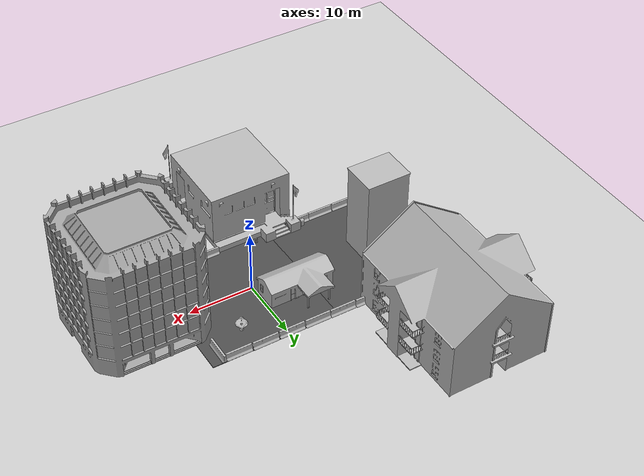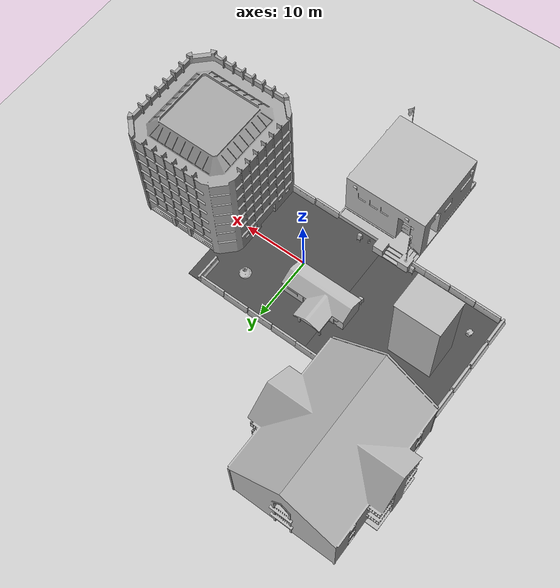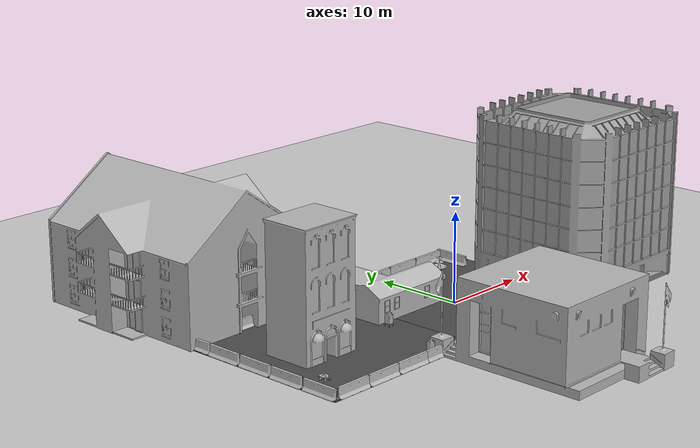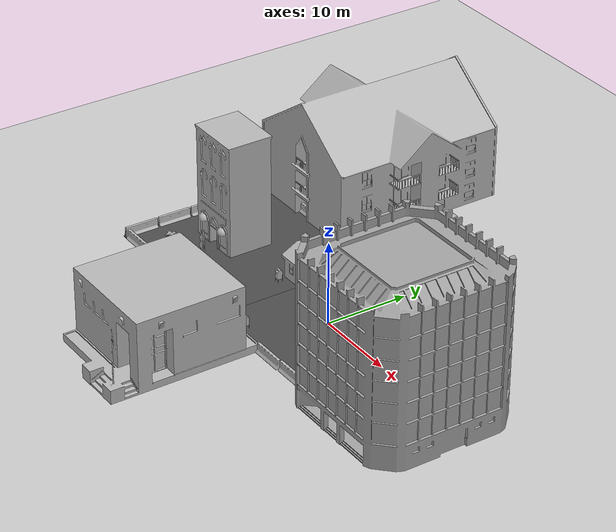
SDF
<sdf version="1.6">
 <world name="default">
  <light name="sun" type="directional">
   <pose>0 0 15 0 -0 0</pose>
   <diffuse>1 1 1 1</diffuse>
   <specular>0.1 0.1 0.1 1</specular>
   <attenuation>
    <range>1000</range>
    <constant>0.9</constant>
    <linear>0.01</linear>
    <quadratic>0.001</quadratic>
   </attenuation>
   <direction>-0.5 0.5 -1</direction>
  </light>
  <model name="ground_plane">
   <static>1</static>
   <link name="link">
    <collision name="collision">
     <geometry><plane><normal>0 0 1</normal><size>100 100</size></plane></geometry>
     <surface><friction><ode><mu>100</mu><mu2>50</mu2></ode></friction></surface>
    </collision>
    <visual name="visual">
     <transparency>1</transparency>
     <cast_shadows>0</cast_shadows>
     <geometry><plane><normal>0 0 1</normal><size>100 100</size></plane></geometry>
     <material>
      <script><uri>file://media/materials/scripts/gazebo.material</uri><name>Gazebo/Grey</name></script>
     </material>
    </visual>
   </link>
  </model>
  <gravity>0 0 -9.8</gravity>
  <magnetic_field>6e-06 2.3e-05 -4.2e-05</magnetic_field>
  <atmosphere type="adiabatic"/>
  <physics name="default_physics" default="0" type="ode">
   <max_step_size>0.001</max_step_size>
   <real_time_factor>1</real_time_factor>
   <real_time_update_rate>1000</real_time_update_rate>
  </physics>
  <scene><ambient>0.4 0.4 0.4 1</ambient><background>0.7 0.7 0.7 1</background><shadows>1</shadows></scene>
  <spherical_coordinates>
   <surface_model>EARTH_WGS84</surface_model>
   <latitude_deg>0</latitude_deg>
   <longitude_deg>0</longitude_deg>
   <elevation>0</elevation>
   <heading_deg>0</heading_deg>
  </spherical_coordinates>
  <model name="Office Building">
   <static>1</static>
   <link name="link">
    <collision name="collision">
     <geometry>
      <mesh><uri>model://office_building/meshes/office_building.dae</uri><scale>1 1 1</scale></mesh>
     </geometry>
    </collision>
    <visual name="visual">
     <geometry>
      <mesh><uri>model://office_building/meshes/office_building.dae</uri><scale>1 1 1</scale></mesh>
     </geometry>
    </visual>
   </link>
   <pose>17.2128 -2.67644 0 0 -0 0</pose>
  </model>
  <model name="asphalt_plane">
   <static>1</static>
   <link name="link">
    <collision name="collision"><geometry><box><size>20 20 0.1</size></box></geometry></collision>
    <visual name="visual">
     <cast_shadows>0</cast_shadows>
     <geometry><box><size>20 20 0.1</size></box></geometry>
     <material>
      <script>
       <uri>model://asphalt_plane/materials/scripts</uri>
       <uri>model://asphalt_plane/materials/textures</uri>
       <name>vrc/asphalt</name>
      </script>
     </material>
    </visual>
   </link>
   <pose>-17.8415 0.862598 0 0 -0 0</pose>
  </model>
  <model name="asphalt_plane_2">
   <static>1</static>
   <link name="link">
    <collision name="collision"><geometry><box><size>20 20 0.1</size></box></geometry></collision>
    <visual name="visual">
     <cast_shadows>0</cast_shadows>
     <geometry><box><size>20 20 0.1</size></box></geometry>
     <material>
      <script>
       <uri>model://asphalt_plane/materials/scripts</uri>
       <uri>model://asphalt_plane/materials/textures</uri>
       <name>vrc/asphalt</name>
      </script>
     </material>
    </visual>
   </link>
   <pose>2.1016 0.908572 0 0 -0 0</pose>
  </model>
  <model name="jersey_barrier">
   <static>1</static>
   <link name="link">
    <visual name="visual">
     <geometry>
      <mesh><uri>model://jersey_barrier/meshes/jersey_barrier.dae</uri><scale>1 1 1</scale></mesh>
     </geometry>
    </visual>
    <collision name="upright">
     <pose>0 0 0.5715 0 -0 0</pose>
     <geometry><box><size>4.06542 0.3063 1.143</size></box></geometry>
    </collision>
    <collision name="base">
     <pose>0 0 0.032258 0 -0 0</pose>
     <geometry><box><size>4.06542 0.8107 0.064516</size></box></geometry>
    </collision>
    <collision name="base2">
     <pose>0 0 0.1 0 -0 0</pose>
     <geometry><box><size>4.06542 0.65 0.1</size></box></geometry>
    </collision>
    <collision name="base3">
     <pose>0 0 0.2 0 -0 0</pose>
     <geometry><box><size>4.06542 0.5 0.1</size></box></geometry>
    </collision>
    <collision name="left-angle">
     <pose>0 -0.224 0.2401 0.9 -0 0</pose>
     <geometry><box><size>4.06542 0.5 0.064516</size></box></geometry>
    </collision>
    <collision name="right-angle">
     <pose>0 0.224 0.2401 -0.9 0 0</pose>
     <geometry><box><size>4.06542 0.5 0.064516</size></box></geometry>
    </collision>
   </link>
   <pose>7.90964 10.5368 0 0 -0 0</pose>
  </model>
  <model name="jersey_barrier_0">
   <static>1</static>
   <link name="link">
    <visual name="visual">
     <geometry>
      <mesh><uri>model://jersey_barrier/meshes/jersey_barrier.dae</uri><scale>1 1 1</scale></mesh>
     </geometry>
    </visual>
    <collision name="upright">
     <pose>0 0 0.5715 0 -0 0</pose>
     <geometry><box><size>4.06542 0.3063 1.143</size></box></geometry>
    </collision>
    <collision name="base">
     <pose>0 0 0.032258 0 -0 0</pose>
     <geometry><box><size>4.06542 0.8107 0.064516</size></box></geometry>
    </collision>
    <collision name="base2">
     <pose>0 0 0.1 0 -0 0</pose>
     <geometry><box><size>4.06542 0.65 0.1</size></box></geometry>
    </collision>
    <collision name="base3">
     <pose>0 0 0.2 0 -0 0</pose>
     <geometry><box><size>4.06542 0.5 0.1</size></box></geometry>
    </collision>
    <collision name="left-angle">
     <pose>0 -0.224 0.2401 0.9 -0 0</pose>
     <geometry><box><size>4.06542 0.5 0.064516</size></box></geometry>
    </collision>
    <collision name="right-angle">
     <pose>0 0.224 0.2401 -0.9 0 0</pose>
     <geometry><box><size>4.06542 0.5 0.064516</size></box></geometry>
    </collision>
   </link>
   <pose>3.73146 10.5941 0 0 -0 0</pose>
  </model>
  <model name="jersey_barrier_1">
   <static>1</static>
   <link name="link">
    <visual name="visual">
     <geometry>
      <mesh><uri>model://jersey_barrier/meshes/jersey_barrier.dae</uri><scale>1 1 1</scale></mesh>
     </geometry>
    </visual>
    <collision name="upright">
     <pose>0 0 0.5715 0 -0 0</pose>
     <geometry><box><size>4.06542 0.3063 1.143</size></box></geometry>
    </collision>
    <collision name="base">
     <pose>0 0 0.032258 0 -0 0</pose>
     <geometry><box><size>4.06542 0.8107 0.064516</size></box></geometry>
    </collision>
    <collision name="base2">
     <pose>0 0 0.1 0 -0 0</pose>
     <geometry><box><size>4.06542 0.65 0.1</size></box></geometry>
    </collision>
    <collision name="base3">
     <pose>0 0 0.2 0 -0 0</pose>
     <geometry><box><size>4.06542 0.5 0.1</size></box></geometry>
    </collision>
    <collision name="left-angle">
     <pose>0 -0.224 0.2401 0.9 -0 0</pose>
     <geometry><box><size>4.06542 0.5 0.064516</size></box></geometry>
    </collision>
    <collision name="right-angle">
     <pose>0 0.224 0.2401 -0.9 0 0</pose>
     <geometry><box><size>4.06542 0.5 0.064516</size></box></geometry>
    </collision>
   </link>
   <pose>-0.464651 10.5923 0 0 -0 0</pose>
  </model>
  <model name="jersey_barrier_2">
   <static>1</static>
   <link name="link">
    <visual name="visual">
     <geometry>
      <mesh><uri>model://jersey_barrier/meshes/jersey_barrier.dae</uri><scale>1 1 1</scale></mesh>
     </geometry>
    </visual>
    <collision name="upright">
     <pose>0 0 0.5715 0 -0 0</pose>
     <geometry><box><size>4.06542 0.3063 1.143</size></box></geometry>
    </collision>
    <collision name="base">
     <pose>0 0 0.032258 0 -0 0</pose>
     <geometry><box><size>4.06542 0.8107 0.064516</size></box></geometry>
    </collision>
    <collision name="base2">
     <pose>0 0 0.1 0 -0 0</pose>
     <geometry><box><size>4.06542 0.65 0.1</size></box></geometry>
    </collision>
    <collision name="base3">
     <pose>0 0 0.2 0 -0 0</pose>
     <geometry><box><size>4.06542 0.5 0.1</size></box></geometry>
    </collision>
    <collision name="left-angle">
     <pose>0 -0.224 0.2401 0.9 -0 0</pose>
     <geometry><box><size>4.06542 0.5 0.064516</size></box></geometry>
    </collision>
    <collision name="right-angle">
     <pose>0 0.224 0.2401 -0.9 0 0</pose>
     <geometry><box><size>4.06542 0.5 0.064516</size></box></geometry>
    </collision>
   </link>
   <pose>-4.62765 10.6255 0 0 -0 0</pose>
  </model>
  <model name="jersey_barrier_3">
   <static>1</static>
   <link name="link">
    <visual name="visual">
     <geometry>
      <mesh><uri>model://jersey_barrier/meshes/jersey_barrier.dae</uri><scale>1 1 1</scale></mesh>
     </geometry>
    </visual>
    <collision name="upright">
     <pose>0 0 0.5715 0 -0 0</pose>
     <geometry><box><size>4.06542 0.3063 1.143</size></box></geometry>
    </collision>
    <collision name="base">
     <pose>0 0 0.032258 0 -0 0</pose>
     <geometry><box><size>4.06542 0.8107 0.064516</size></box></geometry>
    </collision>
    <collision name="base2">
     <pose>0 0 0.1 0 -0 0</pose>
     <geometry><box><size>4.06542 0.65 0.1</size></box></geometry>
    </collision>
    <collision name="base3">
     <pose>0 0 0.2 0 -0 0</pose>
     <geometry><box><size>4.06542 0.5 0.1</size></box></geometry>
    </collision>
    <collision name="left-angle">
     <pose>0 -0.224 0.2401 0.9 -0 0</pose>
     <geometry><box><size>4.06542 0.5 0.064516</size></box></geometry>
    </collision>
    <collision name="right-angle">
     <pose>0 0.224 0.2401 -0.9 0 0</pose>
     <geometry><box><size>4.06542 0.5 0.064516</size></box></geometry>
    </collision>
   </link>
   <pose>-8.72096 10.6719 0 0 -0 0</pose>
  </model>
  <model name="jersey_barrier_4">
   <static>1</static>
   <link name="link">
    <visual name="visual">
     <geometry>
      <mesh><uri>model://jersey_barrier/meshes/jersey_barrier.dae</uri><scale>1 1 1</scale></mesh>
     </geometry>
    </visual>
    <collision name="upright">
     <pose>0 0 0.5715 0 -0 0</pose>
     <geometry><box><size>4.06542 0.3063 1.143</size></box></geometry>
    </collision>
    <collision name="base">
     <pose>0 0 0.032258 0 -0 0</pose>
     <geometry><box><size>4.06542 0.8107 0.064516</size></box></geometry>
    </collision>
    <collision name="base2">
     <pose>0 0 0.1 0 -0 0</pose>
     <geometry><box><size>4.06542 0.65 0.1</size></box></geometry>
    </collision>
    <collision name="base3">
     <pose>0 0 0.2 0 -0 0</pose>
     <geometry><box><size>4.06542 0.5 0.1</size></box></geometry>
    </collision>
    <collision name="left-angle">
     <pose>0 -0.224 0.2401 0.9 -0 0</pose>
     <geometry><box><size>4.06542 0.5 0.064516</size></box></geometry>
    </collision>
    <collision name="right-angle">
     <pose>0 0.224 0.2401 -0.9 0 0</pose>
     <geometry><box><size>4.06542 0.5 0.064516</size></box></geometry>
    </collision>
   </link>
   <pose>-12.8494 10.7615 0 0 -0 0</pose>
  </model>
  <model name="jersey_barrier_5">
   <static>1</static>
   <link name="link">
    <visual name="visual">
     <geometry>
      <mesh><uri>model://jersey_barrier/meshes/jersey_barrier.dae</uri><scale>1 1 1</scale></mesh>
     </geometry>
    </visual>
    <collision name="upright">
     <pose>0 0 0.5715 0 -0 0</pose>
     <geometry><box><size>4.06542 0.3063 1.143</size></box></geometry>
    </collision>
    <collision name="base">
     <pose>0 0 0.032258 0 -0 0</pose>
     <geometry><box><size>4.06542 0.8107 0.064516</size></box></geometry>
    </collision>
    <collision name="base2">
     <pose>0 0 0.1 0 -0 0</pose>
     <geometry><box><size>4.06542 0.65 0.1</size></box></geometry>
    </collision>
    <collision name="base3">
     <pose>0 0 0.2 0 -0 0</pose>
     <geometry><box><size>4.06542 0.5 0.1</size></box></geometry>
    </collision>
    <collision name="left-angle">
     <pose>0 -0.224 0.2401 0.9 -0 0</pose>
     <geometry><box><size>4.06542 0.5 0.064516</size></box></geometry>
    </collision>
    <collision name="right-angle">
     <pose>0 0.224 0.2401 -0.9 0 0</pose>
     <geometry><box><size>4.06542 0.5 0.064516</size></box></geometry>
    </collision>
   </link>
   <pose>-16.9992 10.8204 0 0 -0 0</pose>
  </model>
  <model name="jersey_barrier_6">
   <static>1</static>
   <link name="link">
    <visual name="visual">
     <geometry>
      <mesh><uri>model://jersey_barrier/meshes/jersey_barrier.dae</uri><scale>1 1 1</scale></mesh>
     </geometry>
    </visual>
    <collision name="upright">
     <pose>0 0 0.5715 0 -0 0</pose>
     <geometry><box><size>4.06542 0.3063 1.143</size></box></geometry>
    </collision>
    <collision name="base">
     <pose>0 0 0.032258 0 -0 0</pose>
     <geometry><box><size>4.06542 0.8107 0.064516</size></box></geometry>
    </collision>
    <collision name="base2">
     <pose>0 0 0.1 0 -0 0</pose>
     <geometry><box><size>4.06542 0.65 0.1</size></box></geometry>
    </collision>
    <collision name="base3">
     <pose>0 0 0.2 0 -0 0</pose>
     <geometry><box><size>4.06542 0.5 0.1</size></box></geometry>
    </collision>
    <collision name="left-angle">
     <pose>0 -0.224 0.2401 0.9 -0 0</pose>
     <geometry><box><size>4.06542 0.5 0.064516</size></box></geometry>
    </collision>
    <collision name="right-angle">
     <pose>0 0.224 0.2401 -0.9 0 0</pose>
     <geometry><box><size>4.06542 0.5 0.064516</size></box></geometry>
    </collision>
   </link>
   <pose>-21.1416 10.8364 0 0 -0 0</pose>
  </model>
  <model name="jersey_barrier_7">
   <static>1</static>
   <link name="link">
    <visual name="visual">
     <geometry>
      <mesh><uri>model://jersey_barrier/meshes/jersey_barrier.dae</uri><scale>1 1 1</scale></mesh>
     </geometry>
    </visual>
    <collision name="upright">
     <pose>0 0 0.5715 0 -0 0</pose>
     <geometry><box><size>4.06542 0.3063 1.143</size></box></geometry>
    </collision>
    <collision name="base">
     <pose>0 0 0.032258 0 -0 0</pose>
     <geometry><box><size>4.06542 0.8107 0.064516</size></box></geometry>
    </collision>
    <collision name="base2">
     <pose>0 0 0.1 0 -0 0</pose>
     <geometry><box><size>4.06542 0.65 0.1</size></box></geometry>
    </collision>
    <collision name="base3">
     <pose>0 0 0.2 0 -0 0</pose>
     <geometry><box><size>4.06542 0.5 0.1</size></box></geometry>
    </collision>
    <collision name="left-angle">
     <pose>0 -0.224 0.2401 0.9 -0 0</pose>
     <geometry><box><size>4.06542 0.5 0.064516</size></box></geometry>
    </collision>
    <collision name="right-angle">
     <pose>0 0.224 0.2401 -0.9 0 0</pose>
     <geometry><box><size>4.06542 0.5 0.064516</size></box></geometry>
    </collision>
   </link>
   <pose>-25.137 10.8763 0 0 -0 0</pose>
  </model>
  <model name="jersey_barrier_8_clone_0_clone_clone_0">
   <static>1</static>
   <link name="link">
    <visual name="visual">
     <geometry>
      <mesh><uri>model://jersey_barrier/meshes/jersey_barrier.dae</uri><scale>1 1 1</scale></mesh>
     </geometry>
    </visual>
    <collision name="upright">
     <pose>0 0 0.5715 0 -0 0</pose>
     <geometry><box><size>4.06542 0.3063 1.143</size></box></geometry>
    </collision>
    <collision name="base">
     <pose>0 0 0.032258 0 -0 0</pose>
     <geometry><box><size>4.06542 0.8107 0.064516</size></box></geometry>
    </collision>
    <collision name="base2">
     <pose>0 0 0.1 0 -0 0</pose>
     <geometry><box><size>4.06542 0.65 0.1</size></box></geometry>
    </collision>
    <collision name="base3">
     <pose>0 0 0.2 0 -0 0</pose>
     <geometry><box><size>4.06542 0.5 0.1</size></box></geometry>
    </collision>
    <collision name="left-angle">
     <pose>0 -0.224 0.2401 0.9 -0 0</pose>
     <geometry><box><size>4.06542 0.5 0.064516</size></box></geometry>
    </collision>
    <collision name="right-angle">
     <pose>0 0.224 0.2401 -0.9 0 0</pose>
     <geometry><box><size>4.06542 0.5 0.064516</size></box></geometry>
    </collision>
   </link>
   <pose>-27.4247 10.1056 0 0 0 -1.57916</pose>
  </model>
  <model name="jersey_barrier_8_clone_0_clone_clone_1">
   <static>1</static>
   <link name="link">
    <visual name="visual">
     <geometry>
      <mesh><uri>model://jersey_barrier/meshes/jersey_barrier.dae</uri><scale>1 1 1</scale></mesh>
     </geometry>
    </visual>
    <collision name="upright">
     <pose>0 0 0.5715 0 -0 0</pose>
     <geometry><box><size>4.06542 0.3063 1.143</size></box></geometry>
    </collision>
    <collision name="base">
     <pose>0 0 0.032258 0 -0 0</pose>
     <geometry><box><size>4.06542 0.8107 0.064516</size></box></geometry>
    </collision>
    <collision name="base2">
     <pose>0 0 0.1 0 -0 0</pose>
     <geometry><box><size>4.06542 0.65 0.1</size></box></geometry>
    </collision>
    <collision name="base3">
     <pose>0 0 0.2 0 -0 0</pose>
     <geometry><box><size>4.06542 0.5 0.1</size></box></geometry>
    </collision>
    <collision name="left-angle">
     <pose>0 -0.224 0.2401 0.9 -0 0</pose>
     <geometry><box><size>4.06542 0.5 0.064516</size></box></geometry>
    </collision>
    <collision name="right-angle">
     <pose>0 0.224 0.2401 -0.9 0 0</pose>
     <geometry><box><size>4.06542 0.5 0.064516</size></box></geometry>
    </collision>
   </link>
   <pose>-27.505 5.91084 0 0 0 -1.57916</pose>
  </model>
  <model name="jersey_barrier_8_clone_0_clone_clone_1_clone">
   <static>1</static>
   <link name="link">
    <visual name="visual">
     <geometry>
      <mesh><uri>model://jersey_barrier/meshes/jersey_barrier.dae</uri><scale>1 1 1</scale></mesh>
     </geometry>
    </visual>
    <collision name="upright">
     <pose>0 0 0.5715 0 -0 0</pose>
     <geometry><box><size>4.06542 0.3063 1.143</size></box></geometry>
    </collision>
    <collision name="base">
     <pose>0 0 0.032258 0 -0 0</pose>
     <geometry><box><size>4.06542 0.8107 0.064516</size></box></geometry>
    </collision>
    <collision name="base2">
     <pose>0 0 0.1 0 -0 0</pose>
     <geometry><box><size>4.06542 0.65 0.1</size></box></geometry>
    </collision>
    <collision name="base3">
     <pose>0 0 0.2 0 -0 0</pose>
     <geometry><box><size>4.06542 0.5 0.1</size></box></geometry>
    </collision>
    <collision name="left-angle">
     <pose>0 -0.224 0.2401 0.9 -0 0</pose>
     <geometry><box><size>4.06542 0.5 0.064516</size></box></geometry>
    </collision>
    <collision name="right-angle">
     <pose>0 0.224 0.2401 -0.9 0 0</pose>
     <geometry><box><size>4.06542 0.5 0.064516</size></box></geometry>
    </collision>
   </link>
   <pose>-27.5179 1.6508 0 0 0 -1.57916</pose>
  </model>
  <model name="jersey_barrier_8_clone_0_clone_clone_1_clone_0">
   <static>1</static>
   <link name="link">
    <visual name="visual">
     <geometry>
      <mesh><uri>model://jersey_barrier/meshes/jersey_barrier.dae</uri><scale>1 1 1</scale></mesh>
     </geometry>
    </visual>
    <collision name="upright">
     <pose>0 0 0.5715 0 -0 0</pose>
     <geometry><box><size>4.06542 0.3063 1.143</size></box></geometry>
    </collision>
    <collision name="base">
     <pose>0 0 0.032258 0 -0 0</pose>
     <geometry><box><size>4.06542 0.8107 0.064516</size></box></geometry>
    </collision>
    <collision name="base2">
     <pose>0 0 0.1 0 -0 0</pose>
     <geometry><box><size>4.06542 0.65 0.1</size></box></geometry>
    </collision>
    <collision name="base3">
     <pose>0 0 0.2 0 -0 0</pose>
     <geometry><box><size>4.06542 0.5 0.1</size></box></geometry>
    </collision>
    <collision name="left-angle">
     <pose>0 -0.224 0.2401 0.9 -0 0</pose>
     <geometry><box><size>4.06542 0.5 0.064516</size></box></geometry>
    </collision>
    <collision name="right-angle">
     <pose>0 0.224 0.2401 -0.9 0 0</pose>
     <geometry><box><size>4.06542 0.5 0.064516</size></box></geometry>
    </collision>
   </link>
   <pose>-27.5782 -2.62069 0 0 0 -1.57916</pose>
  </model>
  <model name="jersey_barrier_8_clone_0_clone_clone_1_clone_1">
   <static>1</static>
   <link name="link">
    <visual name="visual">
     <geometry>
      <mesh><uri>model://jersey_barrier/meshes/jersey_barrier.dae</uri><scale>1 1 1</scale></mesh>
     </geometry>
    </visual>
    <collision name="upright">
     <pose>0 0 0.5715 0 -0 0</pose>
     <geometry><box><size>4.06542 0.3063 1.143</size></box></geometry>
    </collision>
    <collision name="base">
     <pose>0 0 0.032258 0 -0 0</pose>
     <geometry><box><size>4.06542 0.8107 0.064516</size></box></geometry>
    </collision>
    <collision name="base2">
     <pose>0 0 0.1 0 -0 0</pose>
     <geometry><box><size>4.06542 0.65 0.1</size></box></geometry>
    </collision>
    <collision name="base3">
     <pose>0 0 0.2 0 -0 0</pose>
     <geometry><box><size>4.06542 0.5 0.1</size></box></geometry>
    </collision>
    <collision name="left-angle">
     <pose>0 -0.224 0.2401 0.9 -0 0</pose>
     <geometry><box><size>4.06542 0.5 0.064516</size></box></geometry>
    </collision>
    <collision name="right-angle">
     <pose>0 0.224 0.2401 -0.9 0 0</pose>
     <geometry><box><size>4.06542 0.5 0.064516</size></box></geometry>
    </collision>
   </link>
   <pose>-27.5931 -6.94284 0 0 0 -1.57916</pose>
  </model>
  <model name="jersey_barrier_8_clone_0_clone_clone_1_clone_9">
   <static>1</static>
   <link name="link">
    <visual name="visual">
     <geometry>
      <mesh><uri>model://jersey_barrier/meshes/jersey_barrier.dae</uri><scale>1 1 1</scale></mesh>
     </geometry>
    </visual>
    <collision name="upright">
     <pose>0 0 0.5715 0 -0 0</pose>
     <geometry><box><size>4.06542 0.3063 1.143</size></box></geometry>
    </collision>
    <collision name="base">
     <pose>0 0 0.032258 0 -0 0</pose>
     <geometry><box><size>4.06542 0.8107 0.064516</size></box></geometry>
    </collision>
    <collision name="base2">
     <pose>0 0 0.1 0 -0 0</pose>
     <geometry><box><size>4.06542 0.65 0.1</size></box></geometry>
    </collision>
    <collision name="base3">
     <pose>0 0 0.2 0 -0 0</pose>
     <geometry><box><size>4.06542 0.5 0.1</size></box></geometry>
    </collision>
    <collision name="left-angle">
     <pose>0 -0.224 0.2401 0.9 -0 0</pose>
     <geometry><box><size>4.06542 0.5 0.064516</size></box></geometry>
    </collision>
    <collision name="right-angle">
     <pose>0 0.224 0.2401 -0.9 0 0</pose>
     <geometry><box><size>4.06542 0.5 0.064516</size></box></geometry>
    </collision>
   </link>
   <pose>10.191 8.87437 0 0 0 -1.57916</pose>
  </model>
  <model name="fire_hydrant">
   <static>1</static>
   <link name="link">
    <collision name="collision">
     <geometry><mesh><uri>model://fire_hydrant/meshes/fire_hydrant.dae</uri><scale>1 1 1</scale></mesh></geometry>
    </collision>
    <visual name="visual">
     <geometry><mesh><uri>model://fire_hydrant/meshes/fire_hydrant.dae</uri><scale>1 1 1</scale></mesh></geometry>
    </visual>
   </link>
   <pose>-5.44823 -8.2293 0 0 -0 0</pose>
  </model>
  <model name="fountain">
   <static>1</static>
   <link name="link">
    <collision name="collision">
     <geometry><mesh><uri>model://fountain/meshes/fountain.dae</uri><scale>1 1 1</scale></mesh></geometry>
    </collision>
    <visual name="visual">
     <geometry><mesh><uri>model://fountain/meshes/fountain.dae</uri><scale>1 1 1</scale></mesh></geometry>
    </visual>
   </link>
   <pose>5.26859 6.57076 0 0 -0 0</pose>
  </model>
  <model name="mars_rover">
   <static>1</static>
   <link name="link">
    <collision name="solar_panel_collision">
     <pose>0 -0.06945 0.47293 0 -0 0</pose>
     <geometry><box><size>0.87974 0.8821 0.02602</size></box></geometry>
    </collision>
    <collision name="chassis_collision">
     <pose>0 -0.05 0.31475 0 -0 0</pose>
     <geometry><box><size>0.49522 0.67401 0.28915</size></box></geometry>
    </collision>
    <collision name="rear_left_bumper_collision">
     <pose>0.30107 0.3835 0.38976 0 -0 0</pose>
     <geometry><box><size>0.04442 0.38897 0.07918</size></box></geometry>
    </collision>
    <collision name="rear_right_bumper_collision">
     <pose>-0.30107 0.3835 0.38976 0 -0 0</pose>
     <geometry><box><size>0.04442 0.38897 0.07918</size></box></geometry>
    </collision>
    <collision name="rear_bumper_collision">
     <pose>0 0.59414 0.38976 0 -0 0</pose>
     <geometry><box><size>0.56656 0.04442 0.07918</size></box></geometry>
    </collision>
    <collision name="bin_back_panel_collision">
     <pose>0 0.47 0.32114 0.69137 -0 0</pose>
     <geometry><box><size>0.43774 0.212366 0.05173</size></box></geometry>
    </collision>
    <collision name="bin_left_panel_collision1">
     <pose>0.22615 0.32897 0.33193 0 -0 0</pose>
     <geometry><box><size>0.01116 0.19338 0.16304</size></box></geometry>
    </collision>
    <collision name="bin_left_panel_collision2">
     <pose>0.22615 0.471 0.39308 0 -0 0</pose>
     <geometry><box><size>0.01116 0.15 0.04</size></box></geometry>
    </collision>
    <collision name="bin_left_panel_collision3">
     <pose>0.22615 0.45 0.35308 0 -0 0</pose>
     <geometry><box><size>0.01116 0.15 0.04</size></box></geometry>
    </collision>
    <collision name="bin_left_panel_collision4">
     <pose>0.22615 0.39308 0.31308 0 -0 0</pose>
     <geometry><box><size>0.01116 0.15 0.04</size></box></geometry>
    </collision>
    <collision name="bin_right_panel_collision1">
     <pose>-0.22615 0.32897 0.33193 0 -0 0</pose>
     <geometry><box><size>0.01116 0.19338 0.16304</size></box></geometry>
    </collision>
    <collision name="bin_right_panel_collision2">
     <pose>-0.22615 0.471 0.39308 0 -0 0</pose>
     <geometry><box><size>0.01116 0.15 0.04</size></box></geometry>
    </collision>
    <collision name="bin_right_panel_collision3">
     <pose>-0.22615 0.45 0.35308 0 -0 0</pose>
     <geometry><box><size>0.01116 0.15 0.04</size></box></geometry>
    </collision>
    <collision name="bin_right_panel_collision4">
     <pose>-0.22615 0.39308 0.31308 0 -0 0</pose>
     <geometry><box><size>0.01116 0.15 0.04</size></box></geometry>
    </collision>
    <collision name="bin_front_panel_collision">
     <pose>0 0.30047 0.32114 2.26207 -0 0</pose>
     <geometry><box><size>0.43774 0.212366 0.05173</size></box></geometry>
    </collision>
    <collision name="front_left_wheel_collision">
     <pose>0.31103 -0.32115 0.1358 1.5707 0 1.5707</pose>
     <geometry><cylinder><radius>0.1358</radius><length>0.1641</length></cylinder></geometry>
    </collision>
    <collision name="front_right_wheel_collision">
     <pose>-0.31103 -0.32115 0.1358 1.5707 0 1.5707</pose>
     <geometry><cylinder><radius>0.1358</radius><length>0.1641</length></cylinder></geometry>
    </collision>
    <collision name="rear_left_wheel_collision">
     <pose>0.31103 0.28049 0.1358 1.5707 0 1.5707</pose>
     <geometry><cylinder><radius>0.1358</radius><length>0.1641</length></cylinder></geometry>
    </collision>
    <collision name="rear_right_wheel_collision">
     <pose>-0.31103 0.28049 0.1358 1.5707 0 1.5707</pose>
     <geometry><cylinder><radius>0.1358</radius><length>0.1641</length></cylinder></geometry>
    </collision>
    <visual name="visual">
     <geometry><mesh><uri>model://mars_rover/meshes/rover.dae</uri><scale>1 1 1</scale></mesh></geometry>
    </visual>
   </link>
   <pose>-24.7678 -4.79205 0 0 -0 0</pose>
  </model>
  <model name="apartment">
   <static>1</static>
   <link name="link">
    <collision name="collision">
     <geometry><mesh><uri>model://apartment/meshes/apartment.dae</uri><scale>1 1 1</scale></mesh></geometry>
    </collision>
    <visual name="visual">
     <geometry><mesh><uri>model://apartment/meshes/apartment.dae</uri><scale>1 1 1</scale></mesh></geometry>
    </visual>
   </link>
   <pose>-20.2797 20.7622 0 0 -0 0</pose>
  </model>
  <model name="postbox">
   <static>1</static>
   <link name="link">
    <collision name="collision">
     <geometry><mesh><uri>model://postbox/meshes/postbox.dae</uri><scale>1 1 1</scale></mesh></geometry>
    </collision>
    <visual name="visual">
     <geometry><mesh><uri>model://postbox/meshes/postbox.dae</uri><scale>1 1 1</scale></mesh></geometry>
    </visual>
   </link>
   <pose>-10.0663 0.255512 0 0 -0 0</pose>
  </model>
  <model name="postbox_clone">
   <static>1</static>
   <link name="link">
    <collision name="collision">
     <geometry><mesh><uri>model://postbox/meshes/postbox.dae</uri><scale>1 1 1</scale></mesh></geometry>
    </collision>
    <visual name="visual">
     <geometry><mesh><uri>model://postbox/meshes/postbox.dae</uri><scale>1 1 1</scale></mesh></geometry>
    </visual>
   </link>
   <pose>-4.14615 -7.84684 0 0 -0 0</pose>
  </model>
  <model name="postbox_clone_0">
   <static>1</static>
   <link name="link">
    <collision name="collision">
     <geometry><mesh><uri>model://postbox/meshes/postbox.dae</uri><scale>1 1 1</scale></mesh></geometry>
    </collision>
    <visual name="visual">
     <geometry><mesh><uri>model://postbox/meshes/postbox.dae</uri><scale>1 1 1</scale></mesh></geometry>
    </visual>
   </link>
   <pose>-13.0892 -7.87896 0 0 -0 0</pose>
  </model>
  <model name="law_office_0">
   <static>1</static>
   <link name="link">
    <collision name="collision">
     <pose>0 0 6.96244 0 -0 0</pose>
     <geometry><box><size>6.84401 5.43165 13.9249</size></box></geometry>
    </collision>
    <visual name="visual">
     <geometry><mesh><uri>model://law_office/meshes/law_office.dae</uri><scale>1 1 1</scale></mesh></geometry>
    </visual>
   </link>
   <pose>-20.4993 1.08828 0 0 -0 0</pose>
  </model>
  <model name="police_station_0">
   <static>1</static>
   <link name="link">
    <collision name="collision_main">
     <pose>0 0 4.28998 0 -0 0</pose>
     <geometry><box><size>13.037 13.037 8.57995</size></box></geometry>
    </collision>
    <collision name="collision_landing">
     <pose>0 0 0.464086 0 -0 0</pose>
     <geometry><box><size>13.037 16.2446 0.928173</size></box></geometry>
    </collision>
    <visual name="visual">
     <geometry>
      <mesh><uri>model://police_station/meshes/police_station.dae</uri><scale>1 1 1</scale></mesh>
     </geometry>
    </visual>
   </link>
   <pose>-6.07698 -17.1829 0 0 -0 0</pose>
  </model>
  <model name="post_office_0">
   <static>1</static>
   <link name="link">
    <collision name="collision">
     <geometry><mesh><uri>model://post_office/meshes/post_office.dae</uri><scale>1 1 1</scale></mesh></geometry>
    </collision>
    <visual name="visual">
     <geometry><mesh><uri>model://post_office/meshes/post_office.dae</uri><scale>1 1 1</scale></mesh></geometry>
    </visual>
   </link>
   <pose>-5.43438 3.19015 0 0 -0 0</pose>
  </model>
  <model name="jersey_barrier_clone">
   <static>1</static>
   <link name="link">
    <visual name="visual">
     <geometry>
      <mesh><uri>model://jersey_barrier/meshes/jersey_barrier.dae</uri><scale>1 1 1</scale></mesh>
     </geometry>
    </visual>
    <collision name="upright">
     <pose>0 0 0.5715 0 -0 0</pose>
     <geometry><box><size>4.06542 0.3063 1.143</size></box></geometry>
    </collision>
    <collision name="base">
     <pose>0 0 0.032258 0 -0 0</pose>
     <geometry><box><size>4.06542 0.8107 0.064516</size></box></geometry>
    </collision>
    <collision name="base2">
     <pose>0 0 0.1 0 -0 0</pose>
     <geometry><box><size>4.06542 0.65 0.1</size></box></geometry>
    </collision>
    <collision name="base3">
     <pose>0 0 0.2 0 -0 0</pose>
     <geometry><box><size>4.06542 0.5 0.1</size></box></geometry>
    </collision>
    <collision name="left-angle">
     <pose>0 -0.224 0.2401 0.9 -0 0</pose>
     <geometry><box><size>4.06542 0.5 0.064516</size></box></geometry>
    </collision>
    <collision name="right-angle">
     <pose>0 0.224 0.2401 -0.9 0 0</pose>
     <geometry><box><size>4.06542 0.5 0.064516</size></box></geometry>
    </collision>
   </link>
   <pose>2.42959 -9.1251 0 0 -0 0</pose>
  </model>
  <model name="jersey_barrier_clone_0">
   <static>1</static>
   <link name="link">
    <visual name="visual">
     <geometry>
      <mesh><uri>model://jersey_barrier/meshes/jersey_barrier.dae</uri><scale>1 1 1</scale></mesh>
     </geometry>
    </visual>
    <collision name="upright">
     <pose>0 0 0.5715 0 -0 0</pose>
     <geometry><box><size>4.06542 0.3063 1.143</size></box></geometry>
    </collision>
    <collision name="base">
     <pose>0 0 0.032258 0 -0 0</pose>
     <geometry><box><size>4.06542 0.8107 0.064516</size></box></geometry>
    </collision>
    <collision name="base2">
     <pose>0 0 0.1 0 -0 0</pose>
     <geometry><box><size>4.06542 0.65 0.1</size></box></geometry>
    </collision>
    <collision name="base3">
     <pose>0 0 0.2 0 -0 0</pose>
     <geometry><box><size>4.06542 0.5 0.1</size></box></geometry>
    </collision>
    <collision name="left-angle">
     <pose>0 -0.224 0.2401 0.9 -0 0</pose>
     <geometry><box><size>4.06542 0.5 0.064516</size></box></geometry>
    </collision>
    <collision name="right-angle">
     <pose>0 0.224 0.2401 -0.9 0 0</pose>
     <geometry><box><size>4.06542 0.5 0.064516</size></box></geometry>
    </collision>
   </link>
   <pose>6.61253 -9.01792 0 0 -0 0</pose>
  </model>
  <model name="jersey_barrier_clone_1">
   <static>1</static>
   <link name="link">
    <visual name="visual">
     <geometry>
      <mesh><uri>model://jersey_barrier/meshes/jersey_barrier.dae</uri><scale>1 1 1</scale></mesh>
     </geometry>
    </visual>
    <collision name="upright">
     <pose>0 0 0.5715 0 -0 0</pose>
     <geometry><box><size>4.06542 0.3063 1.143</size></box></geometry>
    </collision>
    <collision name="base">
     <pose>0 0 0.032258 0 -0 0</pose>
     <geometry><box><size>4.06542 0.8107 0.064516</size></box></geometry>
    </collision>
    <collision name="base2">
     <pose>0 0 0.1 0 -0 0</pose>
     <geometry><box><size>4.06542 0.65 0.1</size></box></geometry>
    </collision>
    <collision name="base3">
     <pose>0 0 0.2 0 -0 0</pose>
     <geometry><box><size>4.06542 0.5 0.1</size></box></geometry>
    </collision>
    <collision name="left-angle">
     <pose>0 -0.224 0.2401 0.9 -0 0</pose>
     <geometry><box><size>4.06542 0.5 0.064516</size></box></geometry>
    </collision>
    <collision name="right-angle">
     <pose>0 0.224 0.2401 -0.9 0 0</pose>
     <geometry><box><size>4.06542 0.5 0.064516</size></box></geometry>
    </collision>
   </link>
   <pose>-25.1222 -8.81716 0 0 -0 0</pose>
  </model>
  <model name="jersey_barrier_clone_2">
   <static>1</static>
   <link name="link">
    <visual name="visual">
     <geometry>
      <mesh><uri>model://jersey_barrier/meshes/jersey_barrier.dae</uri><scale>1 1 1</scale></mesh>
     </geometry>
    </visual>
    <collision name="upright">
     <pose>0 0 0.5715 0 -0 0</pose>
     <geometry><box><size>4.06542 0.3063 1.143</size></box></geometry>
    </collision>
    <collision name="base">
     <pose>0 0 0.032258 0 -0 0</pose>
     <geometry><box><size>4.06542 0.8107 0.064516</size></box></geometry>
    </collision>
    <collision name="base2">
     <pose>0 0 0.1 0 -0 0</pose>
     <geometry><box><size>4.06542 0.65 0.1</size></box></geometry>
    </collision>
    <collision name="base3">
     <pose>0 0 0.2 0 -0 0</pose>
     <geometry><box><size>4.06542 0.5 0.1</size></box></geometry>
    </collision>
    <collision name="left-angle">
     <pose>0 -0.224 0.2401 0.9 -0 0</pose>
     <geometry><box><size>4.06542 0.5 0.064516</size></box></geometry>
    </collision>
    <collision name="right-angle">
     <pose>0 0.224 0.2401 -0.9 0 0</pose>
     <geometry><box><size>4.06542 0.5 0.064516</size></box></geometry>
    </collision>
   </link>
   <pose>-20.9728 -8.83763 0 0 -0 0</pose>
  </model>
  <model name="jersey_barrier_clone_3">
   <static>1</static>
   <link name="link">
    <visual name="visual">
     <geometry>
      <mesh><uri>model://jersey_barrier/meshes/jersey_barrier.dae</uri><scale>1 1 1</scale></mesh>
     </geometry>
    </visual>
    <collision name="upright">
     <pose>0 0 0.5715 0 -0 0</pose>
     <geometry><box><size>4.06542 0.3063 1.143</size></box></geometry>
    </collision>
    <collision name="base">
     <pose>0 0 0.032258 0 -0 0</pose>
     <geometry><box><size>4.06542 0.8107 0.064516</size></box></geometry>
    </collision>
    <collision name="base2">
     <pose>0 0 0.1 0 -0 0</pose>
     <geometry><box><size>4.06542 0.65 0.1</size></box></geometry>
    </collision>
    <collision name="base3">
     <pose>0 0 0.2 0 -0 0</pose>
     <geometry><box><size>4.06542 0.5 0.1</size></box></geometry>
    </collision>
    <collision name="left-angle">
     <pose>0 -0.224 0.2401 0.9 -0 0</pose>
     <geometry><box><size>4.06542 0.5 0.064516</size></box></geometry>
    </collision>
    <collision name="right-angle">
     <pose>0 0.224 0.2401 -0.9 0 0</pose>
     <geometry><box><size>4.06542 0.5 0.064516</size></box></geometry>
    </collision>
   </link>
   <pose>-16.8009 -8.83039 0 0 -0 0</pose>
  </model>
  <model name="jersey_barrier_clone_4">
   <static>1</static>
   <link name="link">
    <visual name="visual">
     <geometry>
      <mesh><uri>model://jersey_barrier/meshes/jersey_barrier.dae</uri><scale>1 1 1</scale></mesh>
     </geometry>
    </visual>
    <collision name="upright">
     <pose>0 0 0.5715 0 -0 0</pose>
     <geometry><box><size>4.06542 0.3063 1.143</size></box></geometry>
    </collision>
    <collision name="base">
     <pose>0 0 0.032258 0 -0 0</pose>
     <geometry><box><size>4.06542 0.8107 0.064516</size></box></geometry>
    </collision>
    <collision name="base2">
     <pose>0 0 0.1 0 -0 0</pose>
     <geometry><box><size>4.06542 0.65 0.1</size></box></geometry>
    </collision>
    <collision name="base3">
     <pose>0 0 0.2 0 -0 0</pose>
     <geometry><box><size>4.06542 0.5 0.1</size></box></geometry>
    </collision>
    <collision name="left-angle">
     <pose>0 -0.224 0.2401 0.9 -0 0</pose>
     <geometry><box><size>4.06542 0.5 0.064516</size></box></geometry>
    </collision>
    <collision name="right-angle">
     <pose>0 0.224 0.2401 -0.9 0 0</pose>
     <geometry><box><size>4.06542 0.5 0.064516</size></box></geometry>
    </collision>
   </link>
   <pose>-12.7791 -8.81429 0 0 -0 0</pose>
  </model>
 </world>
</sdf>
